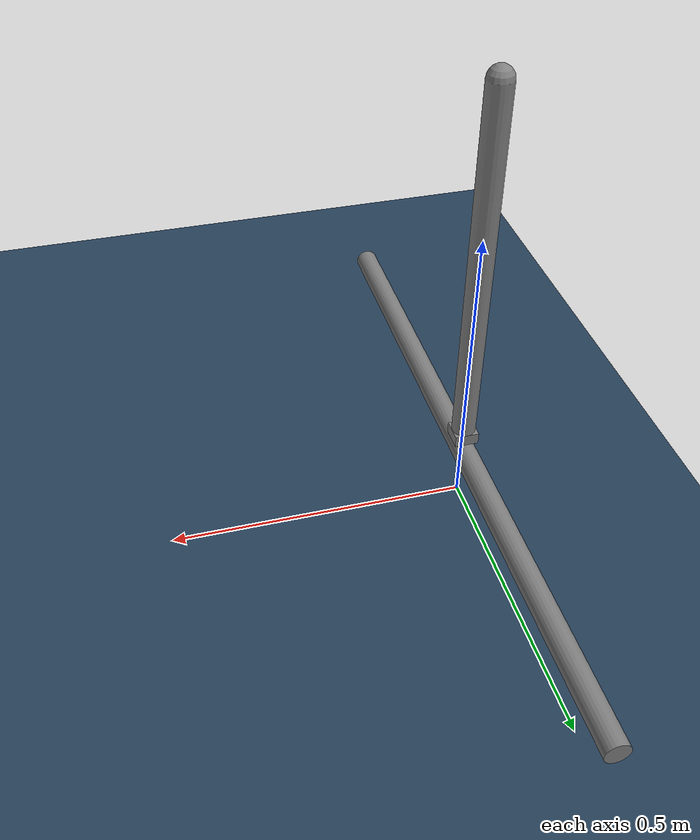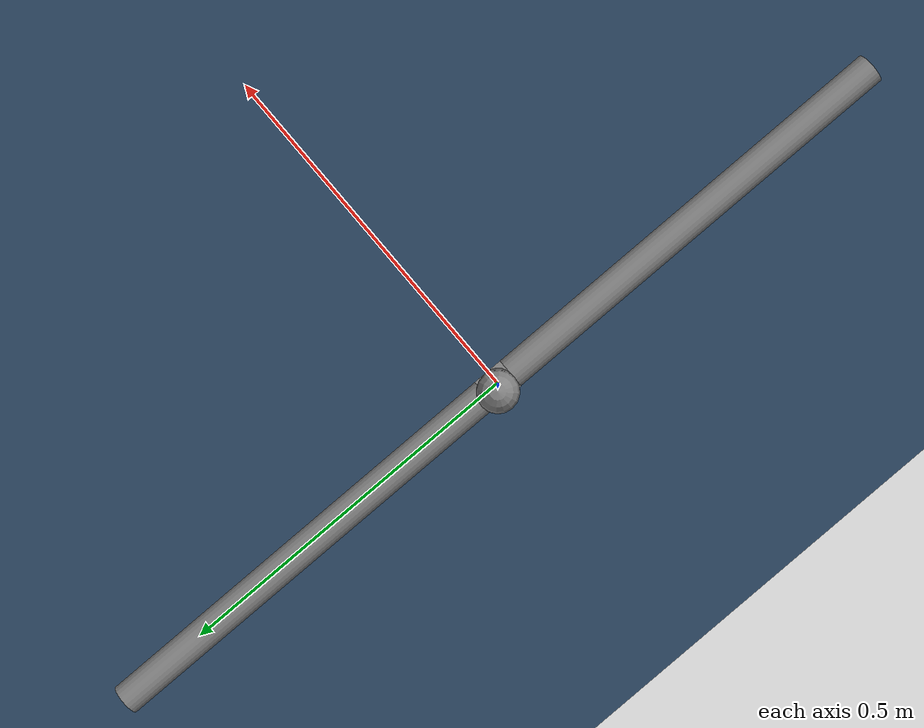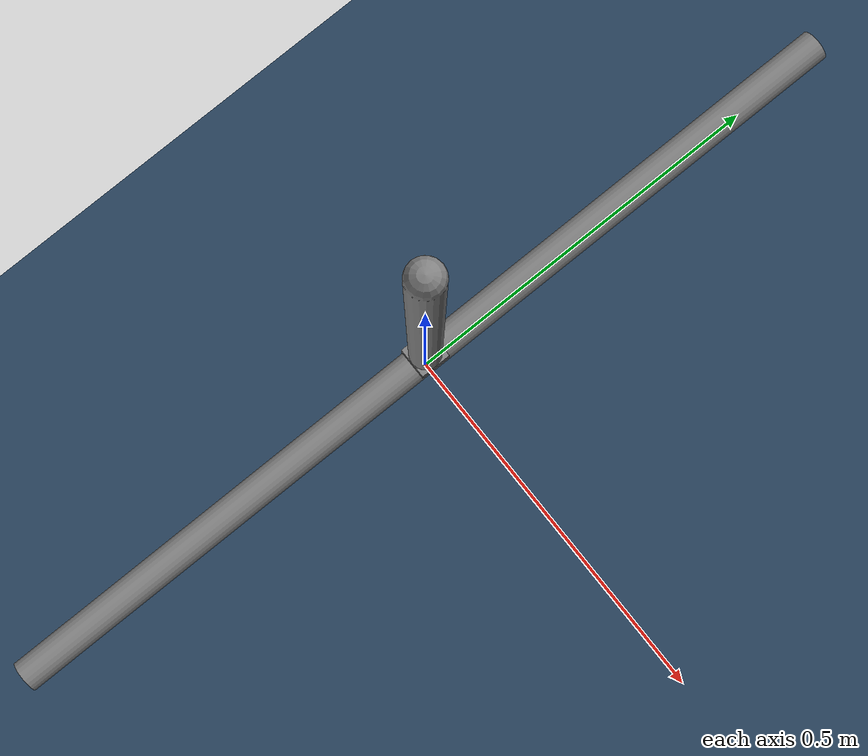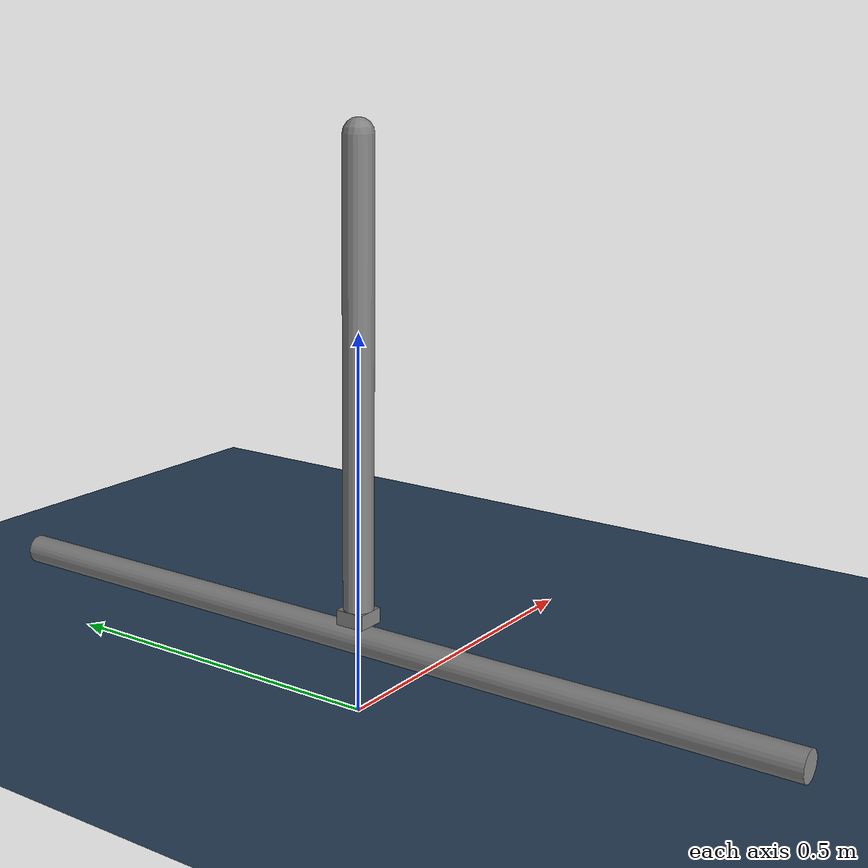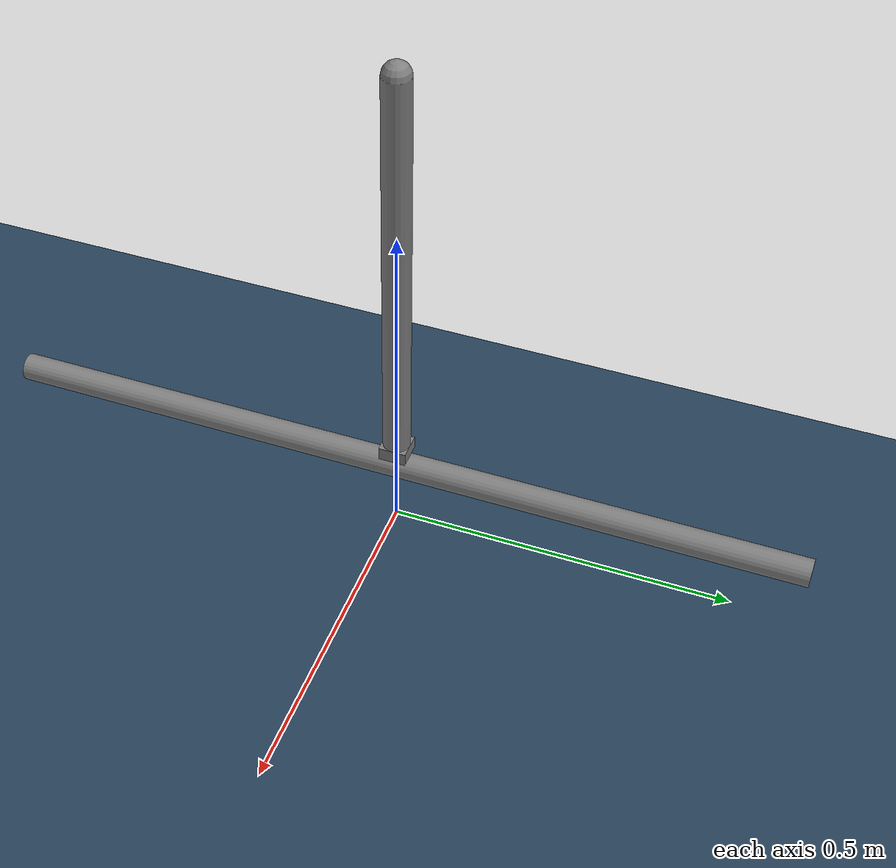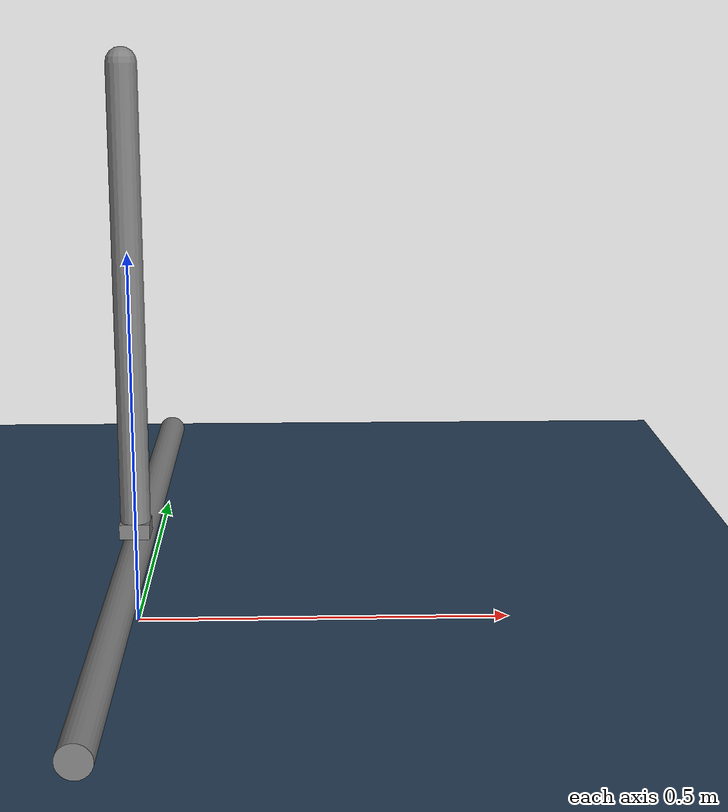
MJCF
<mujoco>
    <asset>
        <texture name="grid" type="2d" builtin="checker" width="512" height="512" rgb1=".1 .2 .3" rgb2=".2 .3 .4"/>
        <material name="grid" texture="grid" texrepeat="1 1" texuniform="true" reflectance=".2"/>
    </asset>

    <worldbody>
        <light diffuse=".5 .5 .5" pos="0 0 3" dir="0 0 -1" />
        <geom type="plane" size="2 2 .1" material="grid" />

        <body name="base" pos="0 0 0.1">
            <geom type="cylinder" size="0.02 0.6" euler="90 0 0"/>

            <body name="car" pos="0 0 0.031">
                <joint name="car_joint" type="slide" axis="0 1 0" limited="true" range="-.6 .6"  />
                <geom type="box" size=".02 .02 .01" mass=".5" />

                <body name="pend" pos="0 0 0.01">
                    <joint name="pend_joint" axis="1 0 0" limited="true" range="-30 30"/>
                    <geom type="capsule" fromto="0 0 0 0 0 0.6" size="0.02" mass=".2" />
                </body>
            </body>
        </body>
    </worldbody>

    <actuator>
        <motor gear="8" joint="car_joint" name="car_motor"/>
        <damper joint="car_joint" name="car_damper" kv="10" ctrlrange="0 .5" />
        <damper joint="pend_joint" name="pendulum_damper" kv="1" ctrlrange="0 .5" />
    </actuator>

    <sensor>
        <jointpos name="theta" joint="pend_joint"/>
    </sensor>
</mujoco>
